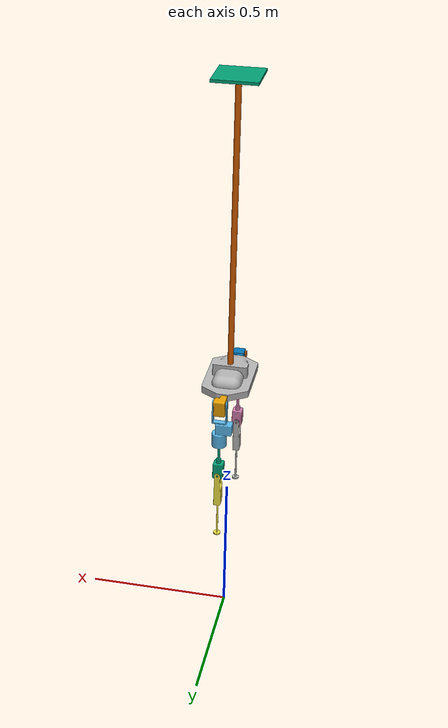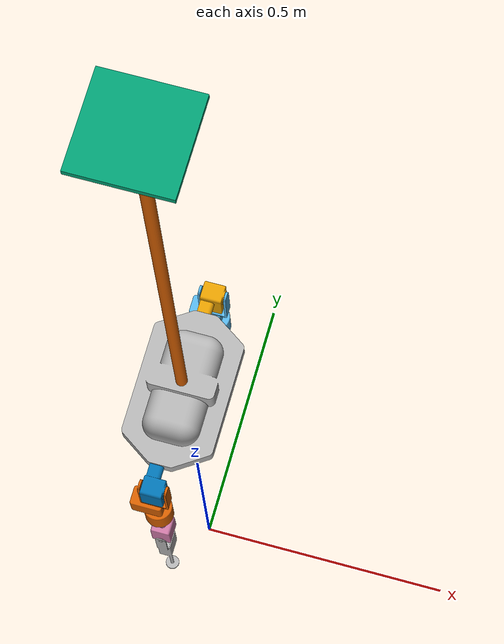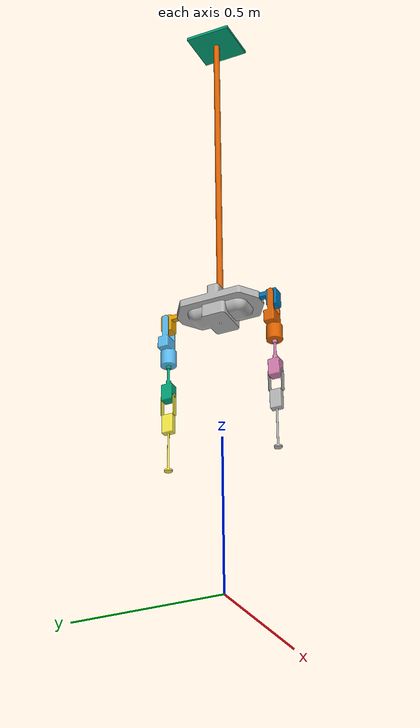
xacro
<?xml version="1.0"?>

<!-- Robot Name -->
<robot name="LiCAS_A1" xmlns:xacro="http://ros.org/wiki/xacro">

<!-- Import Transmissions -->
<xacro:include filename="$(find licasa1_description)/urdf/licasa1_drone.transmission.xacro" />
<xacro:LiCAS_A1_transmission name="LiCAS_A1" hardware_interface1="hardware_interface/PositionJointInterface" hardware_interface2="hardware_interface/EffortJointInterface" />

<!-- Import Gazebo plugins -->
<xacro:include filename="$(find licasa1_description)/gazebo/gazebo.urdf.xacro"/>

<link name="world"/>

<!-- DRONE -->
<joint name="prismatic_joint_x" type="prismatic">
  <origin xyz="0 0 2"/>
  <parent link="world"/>
  <child link="drone_link_x"/>
  <axis xyz="1 0 0"/>
  <dynamics damping="0.0" friction="0.0"/>
  <limit effort="10.0" lower="${-100}" upper="${100}" velocity="6"/>
</joint>

<link name="drone_link_x">
  <inertial>
    <origin rpy="0 0 0" xyz="0 0 0"/>
    <mass value="100" />
    <inertia ixx="10" ixy="0.0" ixz="0.0" iyy="10" iyz="0.0" izz="10"/>
  </inertial>
</link>

<joint name="prismatic_joint_y" type="prismatic">
  <origin xyz="0 0 0"/>
  <parent link="drone_link_x"/>
  <child link="drone_link_y"/>
  <axis xyz="0 1 0"/>
  <dynamics damping="0.0" friction="0.0"/>
  <limit effort="10.0" lower="${-100}" upper="${100}" velocity="6"/>
</joint>

<link name="drone_link_y">
  <inertial>
    <origin rpy="0 0 0" xyz="0 0 0"/>
    <mass value="100" />
    <inertia ixx="10" ixy="0.0" ixz="0.0" iyy="10" iyz="0.0" izz="10"/>
  </inertial>
  <visual>
    <origin rpy="0 0 0" xyz="0 0 0"/>
    <geometry>
      <box size="0.15 0.15 0.01"/>
    </geometry>
  </visual>
</link>

<!-- BAR -->
<joint name="revolute_joint_z" type="revolute" >
  <parent link="drone_link_y" />
  <child link="bar_link_z" />
  <axis xyz="0 0 1" />
  <dynamics damping="0.0" friction="0.02"/>
  <limit effort="10.0" lower="${-150/180*pi}" upper="${20/180*pi}" velocity="6"/>
</joint>

<link name="bar_link_z">
  <inertial>
    <origin rpy="0 0 0" xyz="0 0 -0.1"/>
    <mass value="3.5"/>
    <inertia ixx="0.01" ixy="0.0" ixz="0.0" iyy="0.01" iyz="0.0" izz="0.01"/>
  </inertial>
</link>

<joint name="revolute_joint_x" type="revolute" >
  <parent link="bar_link_z" />
  <child link="bar_link_x" />
  <axis xyz="1 0 0" />
  <dynamics damping="0.0" friction="0.02"/>
  <limit effort="10.0" lower="${-150/180*pi}" upper="${150/180*pi}" velocity="6"/>
</joint>

<link name="bar_link_x">
  <inertial>
    <origin rpy="0 0 0" xyz="0 0 -0.1"/>
    <mass value="3.5"/>
    <inertia ixx="0.01" ixy="0.0" ixz="0.0" iyy="0.01" iyz="0.0" izz="0.01"/>
  </inertial>
</link>

<joint name="revolute_joint_y" type="revolute" >
  <parent link="bar_link_x" />
  <child link="bar_link_y" />
  <axis xyz="0 1 0" />
  <dynamics damping="0.0" friction="0.02"/>
  <limit effort="10.0" lower="${-150/180*pi}" upper="${150/180*pi}" velocity="6"/>
</joint>

<link name="bar_link_y">
  <inertial>
    <origin rpy="0 0 0" xyz="0 0 -0.1"/>
    <mass value="3.5"/>
    <inertia ixx="0.01" ixy="0.0" ixz="0.0" iyy="0.01" iyz="0.0" izz="0.01"/>
  </inertial>
  <visual>
    <origin rpy="0 0 0" xyz="0 0 -0.5"/>
    <geometry>
      <cylinder length="1.0" radius="0.01"/>
    </geometry>
  </visual>
</link>

<!-- SHOULDER -->
<joint name="shoulder_joint_x" type="revolute" >
  <origin xyz="0 0 -1.05"/>
  <parent link="bar_link_y"/>
  <child link="shoulder_link_x"/>
  <axis xyz="1 0 0"/>
  <dynamics damping="0.0" friction="0.0"/>
  <limit effort="6.0" lower="${-150/180*pi}" upper="${150/180*pi}" velocity="6"/>
</joint>

<link name="shoulder_link_x">
  <inertial>
    <origin rpy="0 0 0" xyz="0 0 0"/>
    <mass value="0.3195"/>
    <inertia ixx="3.02e-3" ixy="0" ixz="0" iyy="8.64e-4" iyz="0" izz="3.39e-3"/>
  </inertial>
</link>

<joint name="shoulder_joint_y" type="revolute" >
  <origin xyz="0 0 0"/>
  <parent link="shoulder_link_x"/>
  <child link="shoulder_link_y"/>
  <axis xyz="0 1 0"/>
  <dynamics damping="0.0" friction="0.0"/>
  <limit effort="6.0" lower="${-150/180*pi}" upper="${150/180*pi}" velocity="6"/>
</joint>

<link name="shoulder_link_y">
  <inertial>
    <origin rpy="0.0 0 0" xyz="0 0 0"/>
    <mass value="0.3195"/>
    <inertia ixx="3.02e-3" ixy="0" ixz="0" iyy="8.64e-4" iyz="0" izz="3.39e-3"/>
  </inertial>
  <visual>
    <origin xyz="0 0 0"/>
    <geometry>
      <mesh filename="package://licasa1_description/mesh/Shoulder_Pitch_Structure.dae" scale=".001 .001 .001"/>
    </geometry>
  </visual>
  <collision>
    <origin xyz="0 0 0"/>
    <geometry>
      <mesh filename="package://licasa1_description/mesh/Shoulder_Pitch_Structure.dae" scale=".001 .001 .001"/>
    </geometry>
  </collision>
</link>

<!-- LEFT ARM-->
<joint name="LiCAS_A1_q1_1" type="revolute">
  <origin xyz="0 0.14 0.00"/>
  <parent link="shoulder_link_y"/>
  <child link="left_shoulder_roll"/>
  <axis xyz="0 1 0"/>
  <dynamics damping="0.0" friction="0.0"/>
  <limit effort="10.0" lower="${-90/180*pi}" upper="${90/180*pi}" velocity="6"/>
</joint>

<link name="left_shoulder_roll">
  <inertial>
    <origin xyz="0 0.0236 -0.00946"/>
    <mass value="0.233"/>
    <inertia ixx="3.68e-4" ixy="-7.57e-6" ixz="5.38e-6" iyy="1.16e-4" iyz="-4.8e-5" izz="3.76e-4"/>
  </inertial>
  <visual>
    <origin xyz="0 0.04 0"/>
    <geometry>
      <mesh filename="package://licasa1_description/mesh/Shoulder_Roll_Structure_Left.dae" scale=".001 .001 .001"/>
    </geometry>
  </visual>
  <collision>
    <origin xyz="0 0.04 0"/>
    <geometry>
      <mesh filename="package://licasa1_description/mesh/Shoulder_Roll_Structure_Left.dae" scale=".001 .001 .001"/>
    </geometry>
  </collision>
</link>

<joint name="LiCAS_A1_q1_2" type="revolute">
  <origin xyz="0 0.04 0"/>
  <parent link="left_shoulder_roll"/>
  <child link="left_shoulder_yaw"/>
  <axis xyz="1 0 0"/>
  <dynamics damping="0.0" friction="0.0"/>
  <limit effort="10.0" lower="${-20/180*pi}" upper="${90/180*pi}" velocity="6"/>
</joint>

<link name="left_shoulder_yaw">
  <inertial>
    <origin xyz="-0.015 0 -0.1"/>
    <mass value="0.246"/>
    <inertia ixx="3.49e-4" ixy="0" ixz="-3.79e-5" iyy="4.46e-4" iyz="0" izz="1.49e-4"/>
  </inertial>
  <visual>
    <origin xyz="0 0 0"/>
    <geometry>
      <mesh filename="package://licasa1_description/mesh/Assembly_Shoulder_Yaw_Structure.dae" scale=".001 .001 .001"/>
    </geometry>
  </visual>
  <collision>
    <origin xyz="0 0 0"/>
    <geometry>
      <mesh filename="package://licasa1_description/mesh/Assembly_Shoulder_Yaw_Structure.dae" scale=".001 .001 .001"/>
    </geometry>
  </collision>
</link>

<joint name="LiCAS_A1_q1_3" type="revolute">
  <origin xyz="0 0 -0.143"/>
  <parent link="left_shoulder_yaw"/>
  <child link="left_elbow_pitch"/>
  <axis xyz="0 0 1"/>
  <dynamics damping="0.0" friction="0.0"/>
  <limit effort="10.0" lower="${-90/180*pi}" upper="${90/180*pi}" velocity="6"/>
</joint>

<link name="left_elbow_pitch">
  <inertial>
    <origin xyz="0 0 -0.093"/>
    <mass value="0.214"/>
    <inertia ixx="4.21e-4" ixy="-7.81e-7" ixz="-4.06e-5" iyy="4.26e-4" iyz="1.8e-5" izz="5.01e-5"/>
  </inertial>
  <visual>
    <origin xyz="0 0 -0.132"/>
    <geometry>
      <mesh filename="package://licasa1_description/mesh/Elbow_Pitch_Structure_Left_Cut.dae" scale=".001 .001 .001"/>
    </geometry>
  </visual>
  <collision>
    <origin xyz="0 0 -0.132"/>
    <geometry>
      <mesh filename="package://licasa1_description/mesh/Elbow_Pitch_Structure_Left_Cut.dae" scale=".001 .001 .001"/>
    </geometry>
  </collision>
</link>

<joint name="LiCAS_A1_q1_4" type="revolute">
  <origin xyz="0 0 -0.132"/>
  <parent link="left_elbow_pitch"/>
  <child link="left_forearm_link"/>
  <axis xyz="0 1 0"/>
  <dynamics damping="0.0" friction="0.0"/>
  <limit effort="10.0" lower="${-150/180*pi}" upper="${150/180*pi}" velocity="6"/>
</joint>

<link name="left_forearm_link">
  <inertial>
    <origin xyz="0 0 -0.092"/>
    <mass value="0.106"/>
    <inertia ixx="3.94e-4" ixy="0" ixz="0" iyy="3.75e-4" iyz="-3.5e-6" izz="3.05e-5"/>
  </inertial>
  <visual>
    <origin xyz="0 0 0"/>
    <geometry>
      <mesh filename="package://licasa1_description/mesh/Forearm_Link_with_Gripper_Servo.dae" scale=".001 .001 .001"/>
    </geometry>
  </visual>
  <collision>
    <origin xyz="0 0 0"/>
    <geometry>
      <mesh filename="package://licasa1_description/mesh/Forearm_Link_with_Gripper_Servo.dae" scale=".001 .001 .001"/>
    </geometry>
  </collision>
</link>

<!-- RIGHT ARM-->
<joint name="LiCAS_A1_q2_1" type="revolute">
  <origin xyz="0 -0.14 0.0"/>
  <parent link="shoulder_link_y"/>
  <child link="right_shoulder_roll"/>
  <axis xyz="0 1 0"/>
  <dynamics damping="0.0" friction="0.0"/>
  <limit effort="10.0" lower="${-90/180*pi}" upper="${90/180*pi}" velocity="6"/>
</joint>

<link name="right_shoulder_roll">
  <inertial>
    <origin xyz="0 -0.0236 -0.00946"/>
    <mass value="0.233"/>
    <inertia ixx="3.68e-4" ixy="7.57e-6" ixz="5.38e-6" iyy="1.16e-4" iyz="4.8e-5" izz="3.76e-4"/>
  </inertial>
  <visual>
    <origin xyz="0 -0.04 0"/>
    <geometry>
      <mesh filename="package://licasa1_description/mesh/Shoulder_Roll_Structure_Right.dae" scale=".001 .001 .001"/>
    </geometry>
  </visual>
  <collision>
    <origin xyz="0 -0.04 0"/>
    <geometry>
      <mesh filename="package://licasa1_description/mesh/Shoulder_Roll_Structure_Right.dae" scale=".001 .001 .001"/>
    </geometry>
  </collision>
</link>

<joint name="LiCAS_A1_q2_2" type="revolute">
  <origin xyz="0 -0.04 0"/>
  <parent link="right_shoulder_roll"/>
  <child link="right_shoulder_yaw"/>
  <axis xyz="1 0 0"/>
  <dynamics damping="0.0" friction="0.0"/>
  <limit effort="10.0" lower="${-90/180*pi}" upper="${20/180*pi}" velocity="6"/>
</joint>

<link name="right_shoulder_yaw">
  <inertial>
    <origin xyz="-0.015 0 -0.1"/>
    <mass value="0.246"/>
    <inertia ixx="3.49e-4" ixy="0" ixz="-3.79e-5" iyy="4.46e-4" iyz="0" izz="1.49e-4"/>
  </inertial>
  <visual>
    <origin xyz="0 0 0"/>
    <geometry>
      <mesh filename="package://licasa1_description/mesh/Assembly_Shoulder_Yaw_Structure.dae" scale=".001 .001 .001"/>
    </geometry>
  </visual>
  <collision>
    <origin xyz="0 0 0"/>
    <geometry>
      <mesh filename="package://licasa1_description/mesh/Assembly_Shoulder_Yaw_Structure.dae" scale=".001 .001 .001"/>
    </geometry>
  </collision>
</link>

<joint name="LiCAS_A1_q2_3" type="revolute">
  <origin xyz="0 0 -0.143"/>
  <parent link="right_shoulder_yaw"/>
  <child link="right_elbow_pitch"/>
  <axis xyz="0 0 1"/>
  <dynamics damping="0.0" friction="0.0"/>
  <limit effort="10.0" lower="${-90/180*pi}" upper="${90/180*pi}" velocity="6"/>
</joint>

<link name="right_elbow_pitch">
  <inertial>
    <origin xyz="0 0 -0.13"/>
    <mass value="0.214"/>
    <inertia ixx="4.21e-4" ixy="7.81e-7" ixz="-4.06e-5" iyy="4.26e-4" iyz="-1.8e-5" izz="5.01e-5"/>
  </inertial>
  <visual>
    <origin xyz="0 0 -0.132"/>
    <geometry>
      <mesh filename="package://licasa1_description/mesh/Elbow_Pitch_Structure_Right_Cut.dae" scale=".001 .001 .001"/>
    </geometry>
  </visual>
  <collision>
    <origin xyz="0 0 -0.132"/>
    <geometry>
      <mesh filename="package://licasa1_description/mesh/Elbow_Pitch_Structure_Right_Cut.dae" scale=".001 .001 .001"/>
    </geometry>
  </collision>
</link>

<joint name="LiCAS_A1_q2_4" type="revolute">
  <origin xyz="0 0 -0.132"/>
  <parent link="right_elbow_pitch"/>
  <child link="right_forearm_link"/>
  <axis xyz="0 1 0"/>
  <dynamics damping="0.0" friction="0.0"/>
  <limit effort="10.0" lower="${-150/180*pi}" upper="${150/180*pi}" velocity="6"/>
</joint>

<link name="right_forearm_link">
  <inertial>
    <origin xyz="0 0 -0.092"/>
    <mass value="0.106"/>
    <inertia ixx="3.94e-4" ixy="0" ixz="0" iyy="3.75e-4" iyz="3.5e-6" izz="3.05e-5"/>
  </inertial>
  <visual>
    <origin xyz="0 0 0"/>
    <geometry>
      <mesh filename="package://licasa1_description/mesh/Forearm_Link_with_Gripper_Servo.dae" scale=".001 .001 .001"/>
    </geometry>
  </visual>
  <collision>
    <origin xyz="0 0 0"/>
    <geometry>
      <mesh filename="package://licasa1_description/mesh/Forearm_Link_with_Gripper_Servo.dae" scale=".001 .001 .001"/>
    </geometry>
  </collision>
</link>

</robot>
